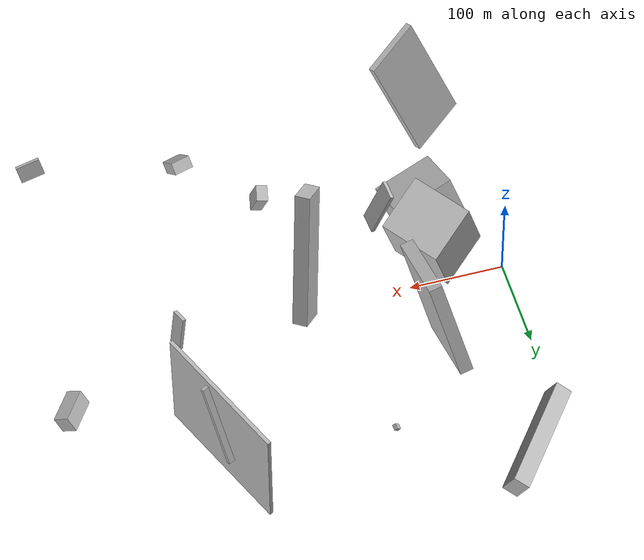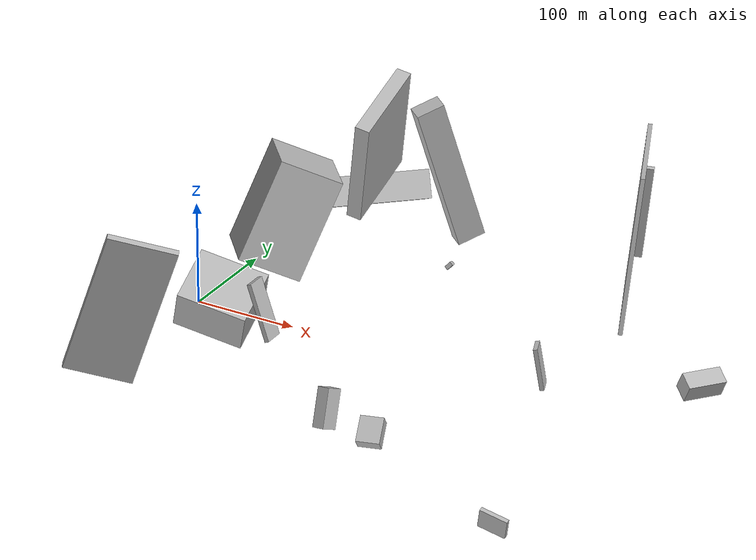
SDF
<sdf version="1.6">
 <world name="default">
  <scene>
   <sky><clouds><speed>12</speed></clouds></sky>
   <ambient>0.4 0.4 0.4 1</ambient>
   <background>0.7 0.7 0.7 1</background>
   <shadows>1</shadows>
  </scene>
  <gravity>0 0 -9.8066</gravity>
  <magnetic_field>6e-06 2.3e-05 -4.2e-05</magnetic_field>
  <physics default="0" name="default_physics" type="ode">
   <ode>
    <solver>
     <type>quick</type>
     <iters>10</iters>
     <sor>1.0</sor>
     <use_dynamic_moi_rescaling>0</use_dynamic_moi_rescaling>
    </solver>
    <constraints>
     <cfm>0</cfm>
     <erp>0.2</erp>
     <contact_max_correcting_vel>100</contact_max_correcting_vel>
     <contact_surface_layer>0.001</contact_surface_layer>
    </constraints>
   </ode>
   <max_step_size>0.004</max_step_size>
   <real_time_factor>1</real_time_factor>
   <real_time_update_rate>250</real_time_update_rate>
  </physics>
  <light name="sun" type="directional">
   <pose>0 0 10 0 0 0</pose>
   <diffuse>0.8 0.8 0.8 1</diffuse>
   <specular>0.2 0.2 0.2 1</specular>
   <attenuation>
    <range>1000</range>
    <constant>0.9</constant>
    <linear>0.01</linear>
    <quadratic>0.001</quadratic>
   </attenuation>
   <direction>-0.5 0.1 -0.9</direction>
  </light>
  <model name="building_1">
   <static>0</static>
   <pose>123.16162792734842 -72.6344905450078 28.499555976994397 -0.08685718418522011 -0.3534884973247816 0.12129812349804636</pose>
   <link name="link">
    <gravity>0</gravity>
    <pose>0 0 27.5 0 0 0</pose>
    <collision name="collision"><geometry><box><size>4 22 55</size></box></geometry></collision>
    <visual name="visual">
     <cast_shadows>0</cast_shadows>
     <geometry><box><size>4 22 55</size></box></geometry>
     <material>
      <script>
       <uri>model://HANNAS_wall/materials/scripts</uri>
       <uri>model://HANNAS_wall/materials/textures</uri>
       <name>vrc/HANNAS_wall</name>
      </script>
     </material>
    </visual>
   </link>
  </model>
  <model name="building_2">
   <static>0</static>
   <pose>286.327685960541 -198.23518678640286 40.816212833783375 1.5761202949486743 0.8637958709795959 1.8602165432519893</pose>
   <link name="link">
    <gravity>0</gravity>
    <pose>0 0 10.5 0 0 0</pose>
    <collision name="collision"><geometry><box><size>13 24 21</size></box></geometry></collision>
    <visual name="visual">
     <cast_shadows>0</cast_shadows>
     <geometry><box><size>13 24 21</size></box></geometry>
     <material>
      <script>
       <uri>model://HANNAS_wall/materials/scripts</uri>
       <uri>model://HANNAS_wall/materials/textures</uri>
       <name>vrc/HANNAS_wall</name>
      </script>
     </material>
    </visual>
   </link>
  </model>
  <model name="building_3">
   <static>0</static>
   <pose>350.77281868349144 181.9084099844332 84.19180820250055 2.340051552396204 -1.4161094509041325 1.225030166339597</pose>
   <link name="link">
    <gravity>0</gravity>
    <pose>0 0 2.0 0 0 0</pose>
    <collision name="collision"><geometry><box><size>150 150 4</size></box></geometry></collision>
    <visual name="visual">
     <cast_shadows>0</cast_shadows>
     <geometry><box><size>150 150 4</size></box></geometry>
     <material>
      <script>
       <uri>model://HANNAS_wall/materials/scripts</uri>
       <uri>model://HANNAS_wall/materials/textures</uri>
       <name>vrc/HANNAS_wall</name>
      </script>
     </material>
    </visual>
   </link>
  </model>
  <model name="building_4">
   <static>0</static>
   <pose>38.777369181253704 -187.63080920335088 89.91708263770242 2.155712647084782 -1.2129397436612523 -0.015170836277232029</pose>
   <link name="link">
    <gravity>0</gravity>
    <pose>0 0 3.5 0 0 0</pose>
    <collision name="collision"><geometry><box><size>150 64 7</size></box></geometry></collision>
    <visual name="visual">
     <cast_shadows>0</cast_shadows>
     <geometry><box><size>150 64 7</size></box></geometry>
     <material>
      <script>
       <uri>model://HANNAS_wall/materials/scripts</uri>
       <uri>model://HANNAS_wall/materials/textures</uri>
       <name>vrc/HANNAS_wall</name>
      </script>
     </material>
    </visual>
   </link>
  </model>
  <model name="building_5">
   <static>0</static>
   <pose>1.594744759457626 191.3044921712663 27.629587072637236 1.6735554338672998 0.4814444014100055 2.523572374766057</pose>
   <link name="link">
    <gravity>0</gravity>
    <pose>0 0 61.0 0 0 0</pose>
    <collision name="collision"><geometry><box><size>18 28 122</size></box></geometry></collision>
    <visual name="visual">
     <cast_shadows>0</cast_shadows>
     <geometry><box><size>18 28 122</size></box></geometry>
     <material>
      <script>
       <uri>model://HANNAS_wall/materials/scripts</uri>
       <uri>model://HANNAS_wall/materials/textures</uri>
       <name>vrc/HANNAS_wall</name>
      </script>
     </material>
    </visual>
   </link>
  </model>
  <model name="building_6">
   <static>0</static>
   <pose>456.6948559213277 -246.17877823988712 17.861356358447324 0.8204877392914204 -1.2323836300764763 -0.7893021909831969</pose>
   <link name="link">
    <gravity>0</gravity>
    <pose>0 0 13.0 0 0 0</pose>
    <collision name="collision"><geometry><box><size>20 4 26</size></box></geometry></collision>
    <visual name="visual">
     <cast_shadows>0</cast_shadows>
     <geometry><box><size>20 4 26</size></box></geometry>
     <material>
      <script>
       <uri>model://HANNAS_wall/materials/scripts</uri>
       <uri>model://HANNAS_wall/materials/textures</uri>
       <name>vrc/HANNAS_wall</name>
      </script>
     </material>
    </visual>
   </link>
  </model>
  <model name="building_7">
   <static>0</static>
   <pose>361.2382372133483 190.42853875357787 98.91070723924148 1.1790919730715375 -1.2991215476011015 -0.7751504144146971</pose>
   <link name="link">
    <gravity>0</gravity>
    <pose>0 0 3.5 0 0 0</pose>
    <collision name="collision"><geometry><box><size>106 4 7</size></box></geometry></collision>
    <visual name="visual">
     <cast_shadows>0</cast_shadows>
     <geometry><box><size>106 4 7</size></box></geometry>
     <material>
      <script>
       <uri>model://HANNAS_wall/materials/scripts</uri>
       <uri>model://HANNAS_wall/materials/textures</uri>
       <name>vrc/HANNAS_wall</name>
      </script>
     </material>
    </visual>
   </link>
  </model>
  <model name="building_8">
   <static>0</static>
   <pose>237.13777177309038 80.04159322008974 93.89794699468253 0.3197826332775863 0.11326137267619807 -0.6586489606475464</pose>
   <link name="link">
    <gravity>0</gravity>
    <pose>0 0 75.0 0 0 0</pose>
    <collision name="collision"><geometry><box><size>16 26 150</size></box></geometry></collision>
    <visual name="visual">
     <cast_shadows>0</cast_shadows>
     <geometry><box><size>16 26 150</size></box></geometry>
     <material>
      <script>
       <uri>model://HANNAS_wall/materials/scripts</uri>
       <uri>model://HANNAS_wall/materials/textures</uri>
       <name>vrc/HANNAS_wall</name>
      </script>
     </material>
    </visual>
   </link>
  </model>
  <model name="building_9">
   <static>0</static>
   <pose>168.76122853685752 172.93461390550667 6.056256789207115 2.7681453963917053 0.699808426818062 -0.09206226556009069</pose>
   <link name="link">
    <gravity>0</gravity>
    <pose>0 0 3.5 0 0 0</pose>
    <collision name="collision"><geometry><box><size>4 6 7</size></box></geometry></collision>
    <visual name="visual">
     <cast_shadows>0</cast_shadows>
     <geometry><box><size>4 6 7</size></box></geometry>
     <material>
      <script>
       <uri>model://HANNAS_wall/materials/scripts</uri>
       <uri>model://HANNAS_wall/materials/textures</uri>
       <name>vrc/HANNAS_wall</name>
      </script>
     </material>
    </visual>
   </link>
  </model>
  <model name="building_10">
   <static>0</static>
   <pose>101.15898267873902 145.55256071838716 78.84245942792883 0.2196656716546076 -0.2758414990335073 1.6248965981693253</pose>
   <link name="link">
    <gravity>0</gravity>
    <pose>0 0 57.0 0 0 0</pose>
    <collision name="collision"><geometry><box><size>87 14 114</size></box></geometry></collision>
    <visual name="visual">
     <cast_shadows>0</cast_shadows>
     <geometry><box><size>87 14 114</size></box></geometry>
     <material>
      <script>
       <uri>model://HANNAS_wall/materials/scripts</uri>
       <uri>model://HANNAS_wall/materials/textures</uri>
       <name>vrc/HANNAS_wall</name>
      </script>
     </material>
    </visual>
   </link>
  </model>
  <model name="building_11">
   <static>0</static>
   <pose>72.85783976745485 -98.15696332380608 43.244160261031084 1.2084982340622807 -0.25513704604568826 -2.9060242477699285</pose>
   <link name="link">
    <gravity>0</gravity>
    <pose>0 0 29.0 0 0 0</pose>
    <collision name="collision"><geometry><box><size>65 40 58</size></box></geometry></collision>
    <visual name="visual">
     <cast_shadows>0</cast_shadows>
     <geometry><box><size>65 40 58</size></box></geometry>
     <material>
      <script>
       <uri>model://HANNAS_wall/materials/scripts</uri>
       <uri>model://HANNAS_wall/materials/textures</uri>
       <name>vrc/HANNAS_wall</name>
      </script>
     </material>
    </visual>
   </link>
  </model>
  <model name="building_12">
   <static>0</static>
   <pose>71.2509403225608 -0.27272323761211936 63.02049859259148 0.13070227446810687 -0.42900228102902965 -2.516591581972896</pose>
   <link name="link">
    <gravity>0</gravity>
    <pose>0 0 49.5 0 0 0</pose>
    <collision name="collision"><geometry><box><size>60 66 99</size></box></geometry></collision>
    <visual name="visual">
     <cast_shadows>0</cast_shadows>
     <geometry><box><size>60 66 99</size></box></geometry>
     <material>
      <script>
       <uri>model://HANNAS_wall/materials/scripts</uri>
       <uri>model://HANNAS_wall/materials/textures</uri>
       <name>vrc/HANNAS_wall</name>
      </script>
     </material>
    </visual>
   </link>
  </model>
  <model name="building_13">
   <static>0</static>
   <pose>353.68775658035344 -1.2113510032628618 24.799036923806938 1.5249299086141879 0.15137527489946764 -2.7871694557980566</pose>
   <link name="link">
    <gravity>0</gravity>
    <pose>0 0 8.0 0 0 0</pose>
    <collision name="collision"><geometry><box><size>4 42 16</size></box></geometry></collision>
    <visual name="visual">
     <cast_shadows>0</cast_shadows>
     <geometry><box><size>4 42 16</size></box></geometry>
     <material>
      <script>
       <uri>model://HANNAS_wall/materials/scripts</uri>
       <uri>model://HANNAS_wall/materials/textures</uri>
       <name>vrc/HANNAS_wall</name>
      </script>
     </material>
    </visual>
   </link>
  </model>
  <model name="building_14">
   <static>0</static>
   <pose>228.29504174259372 -145.85802344863407 20.795763828443008 -1.9382292789459772 -1.119356519960492 1.7612452324517074</pose>
   <link name="link">
    <gravity>0</gravity>
    <pose>0 0 6.0 0 0 0</pose>
    <collision name="collision"><geometry><box><size>36 17 12</size></box></geometry></collision>
    <visual name="visual">
     <cast_shadows>0</cast_shadows>
     <geometry><box><size>36 17 12</size></box></geometry>
     <material>
      <script>
       <uri>model://HANNAS_wall/materials/scripts</uri>
       <uri>model://HANNAS_wall/materials/textures</uri>
       <name>vrc/HANNAS_wall</name>
      </script>
     </material>
    </visual>
   </link>
  </model>
  <model name="building_15">
   <static>0</static>
   <pose>468.91228300615194 52.849645698972786 13.850492291347585 -1.618426311886905 0.4897534642204464 -0.6433558090587026</pose>
   <link name="link">
    <gravity>0</gravity>
    <pose>0 0 18.5 0 0 0</pose>
    <collision name="collision"><geometry><box><size>17 19 37</size></box></geometry></collision>
    <visual name="visual">
     <cast_shadows>0</cast_shadows>
     <geometry><box><size>17 19 37</size></box></geometry>
     <material>
      <script>
       <uri>model://HANNAS_wall/materials/scripts</uri>
       <uri>model://HANNAS_wall/materials/textures</uri>
       <name>vrc/HANNAS_wall</name>
      </script>
     </material>
    </visual>
   </link>
  </model>
 </world>
</sdf>
